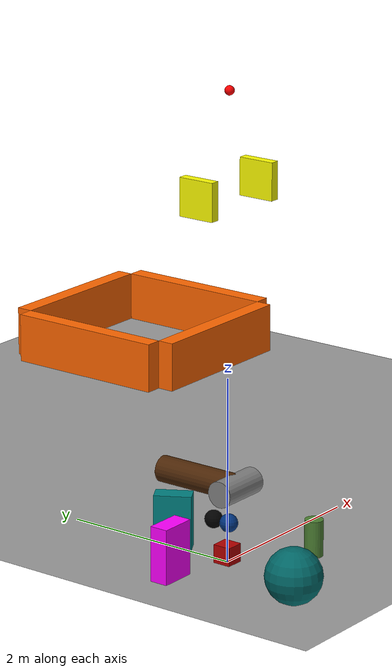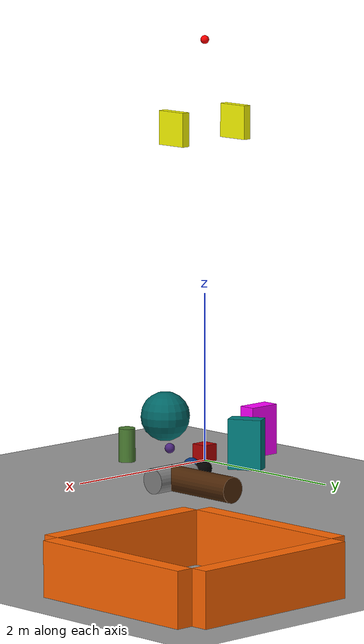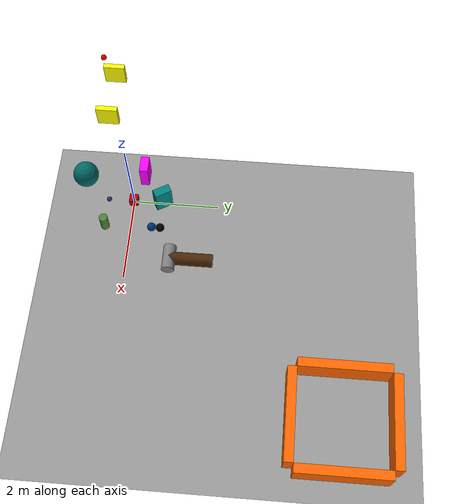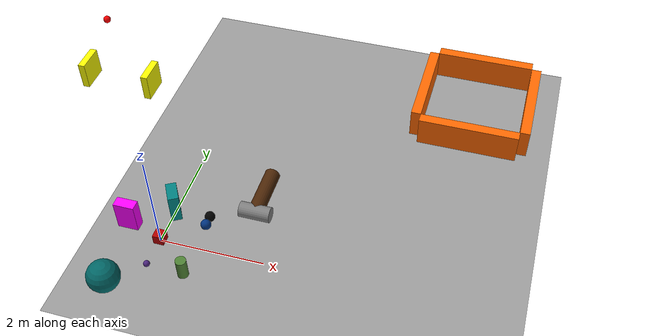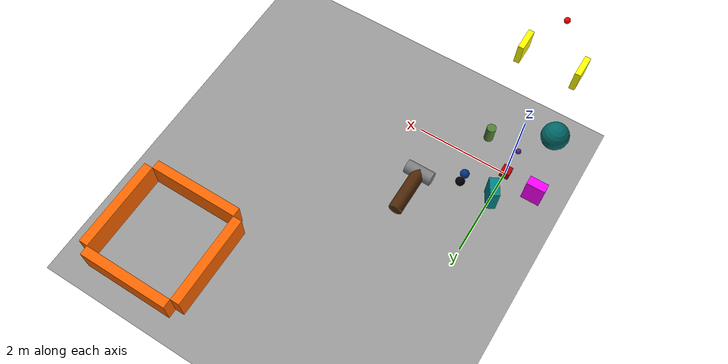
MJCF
<mujoco>
   <visual>
      <headlight ambient="1 1 1" />
   </visual>

   <option gravity="0 0 -2" />

   <include file="blocks.xml"/>

   <worldbody>
      <light diffuse=".5 .5 .5" pos="0 0 3" dir="0 0 -1"/>

      <geom type="plane" size="10 10 0.1" rgba=".6 .6 .6 1"/>

      <body pos="0 0 5" euler="0 0 0">
         <body name="gripper-cam-body">
            <camera mode="fixed" name="gripper-cam"/>
         </body>

         <joint type="slide" name="x-slide" axis="1 0 0"/>
         <joint type="slide" name="y-slide" axis="0 1 0"/>
         <joint type="slide" name="z-slide" axis="0 0 1"/>
         <joint type="hinge" name="rotor" axis="0 0 1"/>
         <geom type="sphere" size=".05" rgba="255 0 0 1" mass="10"/>

         <body pos="-0.5 0 -1" name="arm1_body" euler="0 90 0">
            <joint type="slide" name="arm1"/>
            <geom type="box" size=".2 .2 .05" name="arm_left" rgba="255 128 0 1" mass="100"/>
         </body>
         <body pos="0.5 0 -1" name="arm2_body" euler="0 -90 0">
            <joint type="slide" name="arm2"/>
            <geom type="box" size=".2 .2 .05" name="arm_right" rgba="255 128 0 1" mass="100"/>
         </body>
      </body>

   </worldbody>
   <actuator>

      <position name="x-pos" joint="x-slide" kp="1000" ctrllimited="true" ctrlrange="-5 5"/>
      <position name="y-pos" joint="y-slide" kp="1000" ctrllimited="true" ctrlrange="-5 5"/>
      <position name="z-pos" joint="z-slide" kp="1000" ctrllimited="true" ctrlrange="-3.5 1"/>
      <position name="armp1" joint="arm1" kp="2000" ctrllimited="true" ctrlrange="-0.5 0.5"/>
      <position name="armp2" joint="arm2" kp="2000" ctrllimited="true" ctrlrange="-0.5 0.5"/>
      <position name="rotor-pos" joint="rotor" kp="1000" ctrllimited="true" ctrlrange="-3.14 3.14"/>

      <velocity name="x-vel" joint="x-slide" kv="1000"/>
      <velocity name="y-vel" joint="y-slide" kv="1000"/>
      <velocity name="z-vel" joint="z-slide" kv="1000"/>
      <velocity name="armv1" joint="arm1" kv="2000"/>
      <velocity name="armv2" joint="arm2" kv="2000"/>
      <velocity name="rotor-vel" joint="rotor" kv="1000"/>

   </actuator>
</mujoco>

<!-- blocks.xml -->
<mujoco>
    <asset>
        <texture name="texsponge" type="2d" file="sponge.png"/>
        <material name="matsponge" texture="texsponge" specular="0.3"/>
    </asset>

    <option solver="CG" tolerance="1e-6"/>

    <size nconmax="500" njmax="5000" nstack="5000000"/>

    <worldbody>
        <body name="red_box" pos="0 0 0.1" euler="0 0 0">
            <joint type = "free"/>
            <inertial pos=".1 .1 .1" mass="10" diaginertia="0.01 0.01 0.01"/>
            <geom type="box" size=".1 .1 .1" rgba="0.7 0 0 1"/>
        </body>

        <body name="blue_ball" pos="0.7 0.5 0.1" euler="0 0 0">
            <joint type = "free"/>
            <geom type="sphere" size=".1" rgba="0 0.2 0.5 1"/>
            <geom type="sphere" size=".1" rgba="0 0 0 1" pos="0 .2 0"/>
        </body>

        <body name="pink_box" pos="-0.7 0.2 .3" euler="0 0 90">
            <joint type = "free"/>
            <geom type="box" size=".1 .2 .3" rgba="1 0 1 1"/>
        </body>

        <body name="big_ball" pos="-0.5 -1.2 .3" euler="0 0 0">
            <joint type = "free"/>
            <geom type="sphere" size=".3" rgba="0 .4 .4 1"/>
        </body>

        <body name="blue_box" pos="0 .7 .3" euler="0 0 30">
            <joint type = "free"/>
            <geom type="box" size=".1 .2 .3" rgba="0 .5 .5 1"/>
        </body>

        <body name="purple_ball" pos="0 -.6 .06" euler="0 0 0">
            <joint type = "free"/>
            <geom type="sphere" size=".06" rgba=".3 .15 .5 1"/>
        </body>

        <body name="cylinder" pos=".7 -.6 .2" euler="0 0 0">
            <joint type = "free"/>
            <geom type="cylinder" size=".1 .2" rgba=".3 .5 .2 1"/>
        </body>

        <body name="hammer" pos="1.5 1.5 0.15" euler="90 0 0">
            <joint type = "free"/>
            <geom type="cylinder" size="0.15 0.5" rgba="0.3 0.15 0.03 1"/>
            <geom type="cylinder" size="0.15 0.3" rgba="0.5 0.5 0.5 1" pos="0 0 0.5" euler="0 90 0"/>
        </body>

        <body name="container" pos="5 5 .3">
            <joint type = "free"/>
            <geom type="box" size="1 .1 .3" rgba="1 0.4 0 1" pos="0 1.1 0"/>
            <geom type="box" size=".1 1 .3" rgba="1 0.4 0 1" pos="1.1 0 0"/>
            <geom type="box" size=".1 1 .3" rgba="1 0.4 0 1" pos="-1.1 0 0"/>
            <geom type="box" size="1 .1 .3" rgba="1 0.4 0 1" pos="0 -1.1 0"/>
        </body>

    </worldbody>
</mujoco>
